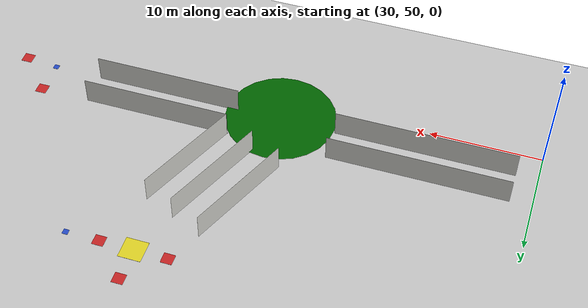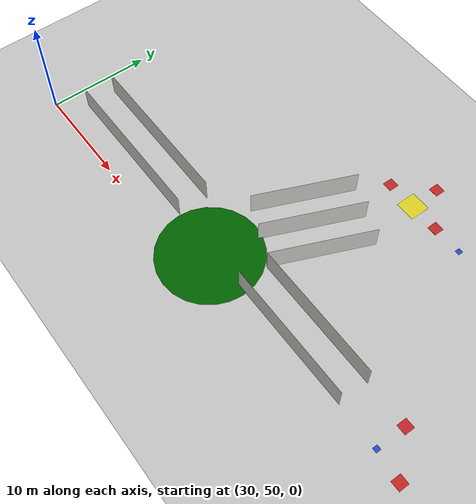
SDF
<sdf version="1.6">
 <world name="default">
  <model name="ground_plane">
   <static>1</static>
   <link name="link">
    <collision name="collision">
     <geometry><plane><normal>0 0 1</normal><size>100 100</size></plane></geometry>
     <surface><friction><ode><mu>100</mu><mu2>50</mu2></ode></friction></surface>
    </collision>
    <visual name="visual">
     <cast_shadows>0</cast_shadows>
     <geometry><plane><normal>0 0 1</normal><size>100 100</size></plane></geometry>
     <material>
      <script><uri>file://media/materials/scripts/gazebo.material</uri><name>Gazebo/Grey</name></script>
     </material>
    </visual>
   </link>
  </model>
  <model name="357">
   <pose>53.5147 62.4561 0 0 -0 0</pose>
   <link name="Wall_16">
    <collision name="Wall_16_Collision">
     <geometry><box><size>10.0198 0.001 2.5</size></box></geometry>
     <pose>0 0 1.25 0 -0 0</pose>
    </collision>
    <visual name="Wall_16_Visual">
     <pose>0 0 1.25 0 -0 0</pose>
     <geometry><box><size>10.0198 0.001 2.5</size></box></geometry>
     <material>
      <script><uri>file://media/materials/scripts/gazebo.material</uri><name>Gazebo/CeilingTiled</name></script>
      <ambient>0.435294 0.796078 0.67451 1</ambient>
     </material>
    </visual>
    <pose>0 -2e-06 0 0 -0 1.16829</pose>
   </link>
   <static>1</static>
  </model>
  <model name="357_clone">
   <pose>56.275 61.25 0 0 -0 0</pose>
   <link name="Wall_16">
    <collision name="Wall_16_Collision">
     <geometry><box><size>10.0198 0.001 2.5</size></box></geometry>
     <pose>0 0 1.25 0 -0 0</pose>
    </collision>
    <visual name="Wall_16_Visual">
     <pose>0 0 1.25 0 -0 0</pose>
     <geometry><box><size>10.0198 0.001 2.5</size></box></geometry>
     <material>
      <script><uri>file://media/materials/scripts/gazebo.material</uri><name>Gazebo/CeilingTiled</name></script>
      <ambient>0.435294 0.796078 0.67451 1</ambient>
     </material>
    </visual>
    <pose>0 -2e-06 0 0 -0 1.16829</pose>
   </link>
   <static>1</static>
  </model>
  <model name="357_clone_0">
   <pose>59.0353 60.0749 0 0 -0 0</pose>
   <link name="Wall_16">
    <collision name="Wall_16_Collision">
     <geometry><box><size>10.0198 0.001 2.5</size></box></geometry>
     <pose>0 0 1.25 0 -0 0</pose>
    </collision>
    <visual name="Wall_16_Visual">
     <pose>0 0 1.25 0 -0 0</pose>
     <geometry><box><size>10.0198 0.001 2.5</size></box></geometry>
     <material>
      <script><uri>file://media/materials/scripts/gazebo.material</uri><name>Gazebo/CeilingTiled</name></script>
      <ambient>0.435294 0.796078 0.67451 1</ambient>
     </material>
    </visual>
    <pose>0 -2e-06 0 0 -0 1.16829</pose>
   </link>
   <static>1</static>
  </model>
  <model name="358">
   <pose>63.775 52.5 0 0 -0 0</pose>
   <link name="Wall_18">
    <collision name="Wall_18_Collision">
     <geometry><box><size>13.45 0.001 2.5</size></box></geometry>
     <pose>0 0 1.25 0 -0 0</pose>
    </collision>
    <visual name="Wall_18_Visual">
     <pose>0 0 1.25 0 -0 0</pose>
     <geometry><box><size>13.45 0.001 2.5</size></box></geometry>
     <material>
      <script><uri>file://media/materials/scripts/gazebo.material</uri><name>Gazebo/CeilingTiled</name></script>
      <ambient>0.435294 0.796078 0.67451 1</ambient>
     </material>
    </visual>
   </link>
   <static>1</static>
  </model>
  <model name="358_clone">
   <pose>63.775 55.5 0 0 -0 0</pose>
   <link name="Wall_18">
    <collision name="Wall_18_Collision">
     <geometry><box><size>13.45 0.001 2.5</size></box></geometry>
     <pose>0 0 1.25 0 -0 0</pose>
    </collision>
    <visual name="Wall_18_Visual">
     <pose>0 0 1.25 0 -0 0</pose>
     <geometry><box><size>13.45 0.001 2.5</size></box></geometry>
     <material>
      <script><uri>file://media/materials/scripts/gazebo.material</uri><name>Gazebo/CeilingTiled</name></script>
      <ambient>0.435294 0.796078 0.67451 1</ambient>
     </material>
    </visual>
   </link>
   <static>1</static>
  </model>
  <model name="359">
   <pose>40 52.5 0 0 -0 0</pose>
   <link name="Wall_20">
    <collision name="Wall_20_Collision">
     <geometry><box><size>16.1 0.001 2.5</size></box></geometry>
     <pose>0 0 1.25 0 -0 0</pose>
    </collision>
    <visual name="Wall_20_Visual">
     <pose>0 0 1.25 0 -0 0</pose>
     <geometry><box><size>16.1 0.001 2.5</size></box></geometry>
     <material>
      <script><uri>file://media/materials/scripts/gazebo.material</uri><name>Gazebo/CeilingTiled</name></script>
      <ambient>0.435294 0.796078 0.67451 1</ambient>
     </material>
    </visual>
   </link>
   <static>1</static>
  </model>
  <model name="359_clone">
   <pose>40 55.5 0 0 -0 0</pose>
   <link name="Wall_20">
    <collision name="Wall_20_Collision">
     <geometry><box><size>16.1 0.001 2.5</size></box></geometry>
     <pose>0 0 1.25 0 -0 0</pose>
    </collision>
    <visual name="Wall_20_Visual">
     <pose>0 0 1.25 0 -0 0</pose>
     <geometry><box><size>16.1 0.001 2.5</size></box></geometry>
     <material>
      <script><uri>file://media/materials/scripts/gazebo.material</uri><name>Gazebo/CeilingTiled</name></script>
      <ambient>0.435294 0.796078 0.67451 1</ambient>
     </material>
    </visual>
   </link>
   <static>1</static>
  </model>
  <model name="my_objectT2">
   <link name="my_box">
    <inertial>
     <mass>1</mass>
     <inertia><ixx>1</ixx><ixy>0</ixy><ixz>0</ixz><iyy>100</iyy><iyz>0</iyz><izz>1</izz></inertia>
    </inertial>
    <collision name="my_box_collision"><geometry><box><size>2 2 0.01</size></box></geometry></collision>
    <visual name="my_box_visual">
     <geometry><box><size>2 2 0.01</size></box></geometry>
     <material>
      <script><name>Gazebo/Yellow</name><uri>file://media/materials/scripts/gazebo.material</uri></script>
     </material>
    </visual>
   </link>
   <pose>60.0006 69.9976 0.114972 -0.000125 8e-06 0.0001</pose>
  </model>
  <model name="my_objecteg2w1">
   <link name="my_box">
    <inertial>
     <mass>1</mass>
     <inertia><ixx>1</ixx><ixy>0</ixy><ixz>0</ixz><iyy>100</iyy><iyz>0</iyz><izz>1</izz></inertia>
    </inertial>
    <collision name="my_box_collision"><geometry><box><size>1 1 0.01</size></box></geometry></collision>
    <visual name="my_box_visual">
     <geometry><box><size>1 1 0.01</size></box></geometry>
     <material>
      <script><name>Gazebo/Red</name><uri>file://media/materials/scripts/gazebo.material</uri></script>
     </material>
    </visual>
   </link>
   <pose>78 52.2 0.104995 0 -0 0</pose>
  </model>
  <model name="my_objecteg2w2">
   <link name="my_box">
    <inertial>
     <mass>1</mass>
     <inertia><ixx>1</ixx><ixy>0</ixy><ixz>0</ixz><iyy>100</iyy><iyz>0</iyz><izz>1</izz></inertia>
    </inertial>
    <collision name="my_box_collision"><geometry><box><size>1 1 0.01</size></box></geometry></collision>
    <visual name="my_box_visual">
     <geometry><box><size>1 1 0.01</size></box></geometry>
     <material>
      <script><name>Gazebo/Red</name><uri>file://media/materials/scripts/gazebo.material</uri></script>
     </material>
    </visual>
   </link>
   <pose>75 55.5 0.104995 0 -0 0</pose>
  </model>
  <model name="my_objecteg4w1">
   <link name="my_box">
    <inertial>
     <mass>1</mass>
     <inertia><ixx>1</ixx><ixy>0</ixy><ixz>0</ixz><iyy>100</iyy><iyz>0</iyz><izz>1</izz></inertia>
    </inertial>
    <collision name="my_box_collision"><geometry><box><size>1 1 0.01</size></box></geometry></collision>
    <visual name="my_box_visual">
     <geometry><box><size>1 1 0.01</size></box></geometry>
     <material>
      <script><name>Gazebo/Red</name><uri>file://media/materials/scripts/gazebo.material</uri></script>
     </material>
    </visual>
   </link>
   <pose>57 70 0.104995 0 -0 0</pose>
  </model>
  <model name="my_objecteg4w2">
   <link name="my_box">
    <inertial>
     <mass>1</mass>
     <inertia><ixx>1</ixx><ixy>0</ixy><ixz>0</ixz><iyy>100</iyy><iyz>0</iyz><izz>1</izz></inertia>
    </inertial>
    <collision name="my_box_collision"><geometry><box><size>1 1 0.01</size></box></geometry></collision>
    <visual name="my_box_visual">
     <geometry><box><size>1 1 0.01</size></box></geometry>
     <material>
      <script><name>Gazebo/Red</name><uri>file://media/materials/scripts/gazebo.material</uri></script>
     </material>
    </visual>
   </link>
   <pose>60 73 0.104995 0 -0 0</pose>
  </model>
  <model name="my_objecteg4w3">
   <link name="my_box">
    <inertial>
     <mass>1</mass>
     <inertia><ixx>1</ixx><ixy>0</ixy><ixz>0</ixz><iyy>100</iyy><iyz>0</iyz><izz>1</izz></inertia>
    </inertial>
    <collision name="my_box_collision"><geometry><box><size>1 1 0.01</size></box></geometry></collision>
    <visual name="my_box_visual">
     <geometry><box><size>1 1 0.01</size></box></geometry>
     <material>
      <script><name>Gazebo/Red</name><uri>file://media/materials/scripts/gazebo.material</uri></script>
     </material>
    </visual>
   </link>
   <pose>63.0003 69.9995 0.114973 3.4e-05 4e-06 1.7e-05</pose>
  </model>
  <model name="my_objectg5w1">
   <link name="my_box">
    <inertial>
     <mass>1</mass>
     <inertia><ixx>1</ixx><ixy>0</ixy><ixz>0</ixz><iyy>100</iyy><iyz>0</iyz><izz>1</izz></inertia>
    </inertial>
    <collision name="my_box_collision"><geometry><box><size>0.5 0.5 0.01</size></box></geometry></collision>
    <visual name="my_box_visual">
     <geometry><box><size>0.5 0.5 0.01</size></box></geometry>
     <material>
      <script><name>Gazebo/Blue</name><uri>file://media/materials/scripts/gazebo.material</uri></script>
     </material>
    </visual>
   </link>
   <pose>74.9932 52.5103 0.104996 -1e-06 0 -0.000573</pose>
  </model>
  <model name="my_objectg6w1">
   <link name="my_box">
    <inertial>
     <mass>1</mass>
     <inertia><ixx>1</ixx><ixy>0</ixy><ixz>0</ixz><iyy>100</iyy><iyz>0</iyz><izz>1</izz></inertia>
    </inertial>
    <collision name="my_box_collision"><geometry><box><size>0.5 0.5 0.01</size></box></geometry></collision>
    <visual name="my_box_visual">
     <geometry><box><size>0.5 0.5 0.01</size></box></geometry>
     <material>
      <script><name>Gazebo/Blue</name><uri>file://media/materials/scripts/gazebo.material</uri></script>
     </material>
    </visual>
   </link>
   <pose>59.9923 70.0118 0.104964 -5e-06 8e-06 -0.001159</pose>
  </model>
  <model name="my_objectg6w2">
   <link name="my_box">
    <inertial>
     <mass>1</mass>
     <inertia><ixx>1</ixx><ixy>0</ixy><ixz>0</ixz><iyy>100</iyy><iyz>0</iyz><izz>1</izz></inertia>
    </inertial>
    <collision name="my_box_collision"><geometry><box><size>0.5 0.5 0.01</size></box></geometry></collision>
    <visual name="my_box_visual">
     <geometry><box><size>0.5 0.5 0.01</size></box></geometry>
     <material>
      <script><name>Gazebo/Blue</name><uri>file://media/materials/scripts/gazebo.material</uri></script>
     </material>
    </visual>
   </link>
   <pose>62.9915 70.0128 0.104986 1e-06 4e-06 -0.000278</pose>
  </model>
  <model name="my_objectg6w3">
   <link name="my_box">
    <inertial>
     <mass>1</mass>
     <inertia><ixx>1</ixx><ixy>0</ixy><ixz>0</ixz><iyy>100</iyy><iyz>0</iyz><izz>1</izz></inertia>
    </inertial>
    <collision name="my_box_collision"><geometry><box><size>0.5 0.5 0.01</size></box></geometry></collision>
    <visual name="my_box_visual">
     <geometry><box><size>0.5 0.5 0.01</size></box></geometry>
     <material>
      <script><name>Gazebo/Blue</name><uri>file://media/materials/scripts/gazebo.material</uri></script>
     </material>
    </visual>
   </link>
   <pose>65.9907 70.0138 0.104999 0 0 -0.000503</pose>
  </model>
  <model name="unit_cylinder_0_3_clone">
   <link name="link">
    <inertial>
     <mass>1</mass>
     <inertia><ixx>0.145833</ixx><ixy>0</ixy><ixz>0</ixz><iyy>0.145833</iyy><iyz>0</iyz><izz>0.125</izz></inertia>
    </inertial>
    <gravity>0</gravity>
    <visual name="visual">
     <geometry><cylinder><radius>5</radius><length>0.01</length></cylinder></geometry>
     <material>
      <script><name>Gazebo/Grey</name><uri>file://media/materials/scripts/gazebo.material</uri></script>
      <ambient>0 0.4 0 0</ambient>
      <diffuse>0 0.4 0 0</diffuse>
      <specular>0 0.41 0 0</specular>
      <emissive>0 0.4 0 0</emissive>
      <shader type="vertex"><normal_map>__default__</normal_map></shader>
     </material>
    </visual>
   </link>
   <static>0</static>
   <pose>53.1292 52.2479 0.1 0 -0 0</pose>
  </model>
 </world>
</sdf>
